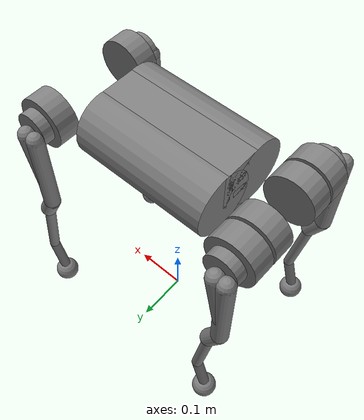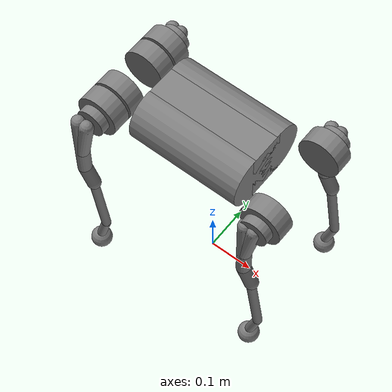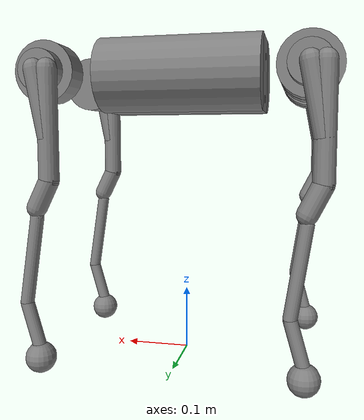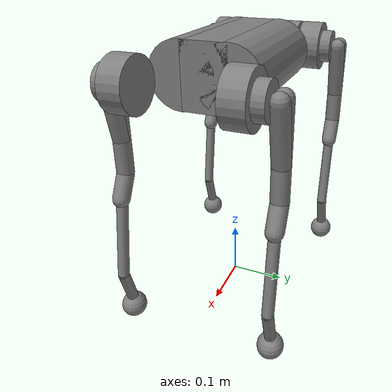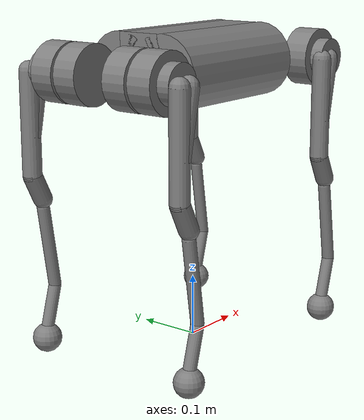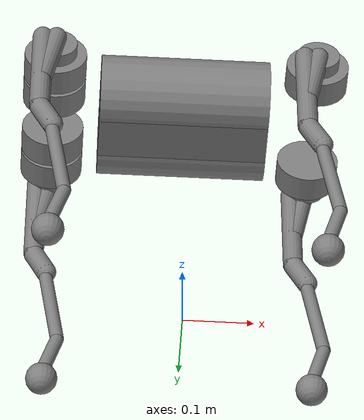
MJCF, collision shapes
<mujoco model="go2 feet only">
  <compiler angle="radian" meshdir="../../../../../mujoco_menagerie/unitree_go2/assets" autolimits="true"/>

  <option iterations="1" ls_iterations="5" timestep="0.004" integrator="Euler">
    <flag eulerdamp="disable"/>
  </option>

  <default>
    <default class="go2">
      <!-- This globaly disables all collisions. -->
      <geom condim="1" contype="0" conaffinity="0"/>
      <joint axis="0 1 0" armature="0.01" damping="2.0"/>
      <general forcerange="-24 24" biastype="affine" gainprm="50 0 0" biasprm="0 -50 -0.5"/>

      <default class="abduction">
        <joint axis="1 0 0" range="-1.0472 1.0472" frictionloss="0.3"/>
        <general ctrlrange="-0.9472 0.9472"/>
      </default>

      <default class="hip">
        <joint range="-1.5708 3.4907" frictionloss="0.3"/>
        <general ctrlrange="-1.4 2.5"/>
      </default>

      <default class="knee">
        <joint range="-2.7227 -0.83776" frictionloss="1.0"/>
        <general ctrlrange="-2.6227 -0.84776"/>
      </default>

      <default class="visual">
        <geom type="mesh" contype="0" conaffinity="0" group="2" material="dark"/>
      </default>

      <default class="collision">
        <geom group="3" type="capsule"/>
        <default class="hip_left1">
          <geom size="0.046 0.02" pos="0 0.045 0" quat="1 1 0 0" type="cylinder"/>
        </default>
        <default class="hip_left2">
          <geom size="0.031 0.02" pos="0 0.065 0" quat="1 1 0 0" type="cylinder"/>
        </default>
        <default class="hip_left3">
          <geom size="0.046 0.02" quat="1 1 0 0" type="cylinder"/>
        </default>
        <default class="hip_right1">
          <geom size="0.046 0.02" pos="0 -0.045 0" quat="1 1 0 0" type="cylinder"/>
        </default>
        <default class="hip_right2">
          <geom size="0.031 0.02" pos="0 -0.065 0" quat="1 1 0 0" type="cylinder"/>
        </default>
        <default class="hip_right3">
          <geom size="0.046 0.02" quat="1 1 0 0" type="cylinder"/>
        </default>
        <default class="thigh1">
          <geom size="0.015" fromto="-0.02 0 0 -0.02 0 -0.16"/>
        </default>
        <default class="thigh2">
          <geom size="0.015" fromto="0 0 0 -0.02 0 -0.1"/>
        </default>
        <default class="thigh3">
          <geom size="0.015" fromto="-0.02 0 -0.16 0 0 -0.2"/>
        </default>
        <default class="calf1">
          <geom size="0.01" fromto="0 0 0 0.02 0 -0.13"/>
        </default>
        <default class="calf2">
          <geom size="0.01" fromto="0.02 0 -0.13 0 0 -0.2"/>
        </default>
        <default class="foot">
          <geom type="sphere" size="0.023" pos="0 0 -0.213" solimp="0.9 .95 0.023" contype="0" conaffinity="1"/>
        </default>
      </default>
    </default>
  </default>

  <asset>
    <material name="metal" rgba=".9 .95 .95 1"/>
    <material name="black" rgba="0 0 0 1"/>
    <material name="white" rgba="1 1 1 1"/>
    <material name="gray" rgba="0.671705 0.692426 0.774270 1"/>

    <mesh class="go2" file="../../../../mujoco_menagerie/unitree_go2/assets/base_0.obj"/>
    <mesh class="go2" file="../../../../mujoco_menagerie/unitree_go2/assets/base_1.obj"/>
    <mesh class="go2" file="../../../../mujoco_menagerie/unitree_go2/assets/base_2.obj"/>
    <mesh class="go2" file="../../../../mujoco_menagerie/unitree_go2/assets/base_3.obj"/>
    <mesh class="go2" file="../../../../mujoco_menagerie/unitree_go2/assets/base_4.obj"/>
    <mesh class="go2" file="../../../../mujoco_menagerie/unitree_go2/assets/hip_0.obj"/>
    <mesh class="go2" file="../../../../mujoco_menagerie/unitree_go2/assets/hip_1.obj"/>
    <mesh class="go2" file="../../../../mujoco_menagerie/unitree_go2/assets/thigh_0.obj"/>
    <mesh class="go2" file="../../../../mujoco_menagerie/unitree_go2/assets/thigh_1.obj"/>
    <mesh class="go2" file="../../../../mujoco_menagerie/unitree_go2/assets/thigh_mirror_0.obj"/>
    <mesh class="go2" file="../../../../mujoco_menagerie/unitree_go2/assets/thigh_mirror_1.obj"/>
    <mesh class="go2" file="../../../../mujoco_menagerie/unitree_go2/assets/calf_0.obj"/>
    <mesh class="go2" file="../../../../mujoco_menagerie/unitree_go2/assets/calf_1.obj"/>
    <mesh class="go2" file="../../../../mujoco_menagerie/unitree_go2/assets/calf_mirror_0.obj"/>
    <mesh class="go2" file="../../../../mujoco_menagerie/unitree_go2/assets/calf_mirror_1.obj"/>
    <mesh class="go2" file="../../../../mujoco_menagerie/unitree_go2/assets/foot.obj"/>
  </asset>

  <worldbody>
    <light name="spotlight" mode="targetbodycom" target="trunk" pos="3 0 4"/>
    <body name="trunk" pos="0 0 0.445" childclass="go2">

      <camera name="track" pos="0.846 -1.3 0.316" xyaxes="0.866 0.500 0.000 -0.171 0.296 0.940" mode="trackcom"/>
      <camera name="top" pos="-1 0 1" xyaxes="0 -1 0 0.7 0 0.7" mode="trackcom"/>
      <camera name="side" pos="0 -1 .3" xyaxes="1 0 0 0 1 2" mode="trackcom"/>
      <camera name="back" pos="-1 0 .3" xyaxes="0 -1 0 1 0 2" mode="trackcom"/>

      <site name="head" pos="0.3 0 0" rgba="1 0 0 1" size="0.02" group="5"/>

      <inertial pos="0.021112 0 -0.005366" quat="-0.000543471 0.713435 -0.00173769 0.700719" mass="6.921"
        diaginertia="0.107027 0.0980771 0.0244531"/>
      <freejoint/>
      <geom mesh="base_0" material="black" class="visual"/>
      <geom mesh="base_1" material="black" class="visual"/>
      <geom mesh="base_2" material="black" class="visual"/>
      <geom mesh="base_3" material="white" class="visual"/>
      <geom mesh="base_4" material="gray" class="visual"/>

      <geom class="collision" size="0.125 0.04 0.057" type="box"/>
      <geom class="collision" quat="1 0 1 0" pos="0 -0.04 0" size="0.058 0.125" type="cylinder"/>
      <geom class="collision" quat="1 0 1 0" pos="0 +0.04 0" size="0.058 0.125" type="cylinder"/>

      <site name="imu" pos="-0.02557 0 0.04232" group="5"/>

      <body name="FR_hip" pos="0.1934 -0.0465 0">
        <inertial pos="-0.0054 -0.00194 -0.000105" quat="0.507341 0.514169 0.495027 0.482891" mass="0.68"
          diaginertia="0.000734064 0.000468438 0.000398719"/>
        <joint class="abduction" name="FR_hip_joint"/>
        <geom mesh="hip_0" material="metal" class="visual"/>
        <geom mesh="hip_1" material="gray" class="visual"/>
        <geom class="hip_right1"/>
        <geom class="hip_right2"/>

        <body name="FR_thigh" pos="0 -0.08 0">
          <inertial pos="-0.00304722 0.019315 -0.0305004" quat="0.498237 0.505462 0.499245 0.497014" mass="0.678"
            diaginertia="0.00088403 0.000596003 0.000479967"/>
          <joint class="hip" name="FR_thigh_joint"/>
          <geom class="thigh1"/>
          <geom class="thigh2"/>
          <geom class="thigh3"/>
          <geom mesh="thigh_mirror_0" material="metal" class="visual"/>
          <geom mesh="thigh_mirror_1" material="gray" class="visual"/>

          <body name="FR_calf" pos="0 0 -0.213">
            <inertial pos="0.00629595 0.000622121 -0.141417" quat="0.703508 -0.00450087 0.00154099 0.710672"
              mass="0.241352" diaginertia="0.0014901 0.00146356 5.31397e-05"/>
            <joint class="knee" name="FR_calf_joint"/>
            <geom mesh="calf_mirror_0" material="gray" class="visual"/>
            <geom mesh="calf_mirror_1" material="black" class="visual"/>
            <geom class="calf1"/>
            <geom class="calf2"/>

            <geom pos="0 0 -0.213" mesh="foot" class="visual" material="black"/>
            <geom name="FR" class="foot"/>
            <site name="FR" pos="0 0 -0.213" type="sphere" size="0.023" group="5"/>

          </body>
        </body>
      </body>
      <body name="FL_hip" pos="0.1934 0.0465 0">
        <inertial pos="-0.0054 0.00194 -0.000105" quat="0.497014 0.499245 0.505462 0.498237" mass="0.678"
          diaginertia="0.00088403 0.000596003 0.000479967"/>
        <joint class="abduction" name="FL_hip_joint"/>
        <geom mesh="hip_0" material="metal" class="visual"/>
        <geom mesh="hip_1" material="gray" class="visual"/>
        <geom class="hip_left1"/>
        <geom class="hip_left2"/>

        <body name="FL_thigh" pos="0 0.0955 0">
          <inertial pos="-0.00374 -0.0223 -0.0327" quat="0.829533 0.0847635 -0.0200632 0.551623" mass="1.152"
            diaginertia="0.00594973 0.00584149 0.000878787"/>
          <joint class="hip" name="FL_thigh_joint"/>
          <geom mesh="thigh_0" material="metal" class="visual"/>
          <geom mesh="thigh_1" material="gray" class="visual"/>
          <geom class="thigh1"/>
          <geom class="thigh2"/>
          <geom class="thigh3"/>

          <body name="FL_calf" pos="0 0 -0.213">
            <inertial pos="0.00629595 -0.000622121 -0.141417" quat="0.710672 0.00154099 -0.00450087 0.703508"
              mass="0.241352" diaginertia="0.0014901 0.00146356 5.31397e-05"/>
            <joint class="knee" name="FL_calf_joint"/>
            <geom mesh="calf_0" material="gray" class="visual"/>
            <geom mesh="calf_1" material="black" class="visual"/>
            <geom class="calf1"/>
            <geom class="calf2"/>
            <geom pos="0 0 -0.213" mesh="foot" class="visual" material="black"/>
            <geom name="FL" class="foot"/>
            <site name="FL" pos="0 0 -0.213" type="sphere" size="0.023" group="5"/>
          </body>

        </body>
      </body>
      <body name="RR_hip" pos="-0.1934 -0.0465 0">
        <inertial pos="0.0054 -0.00194 -0.000105" quat="0.499245 0.497014 0.498237 0.505462" mass="0.678"
          diaginertia="0.00088403 0.000596003 0.000479967"/>

        <joint class="abduction" name="RR_hip_joint"/>
        <geom mesh="hip_0" material="metal" class="visual" quat="2.14617e-09 4.63268e-05 4.63268e-05 -1"/>
        <geom mesh="hip_1" material="gray" class="visual" quat="2.14617e-09 4.63268e-05 4.63268e-05 -1"/>
        <geom class="hip_right1"/>
        <geom class="hip_right2"/>
        <geom class="hip_right3"/>

        <body name="RR_thigh" pos="0 -0.0955 0">
          <inertial pos="-0.00374 0.0223 -0.0327" quat="0.551623 -0.0200632 0.0847635 0.829533" mass="1.152"
            diaginertia="0.00594973 0.00584149 0.000878787"/>
          <joint class="hip" name="RR_thigh_joint"/>
          <geom mesh="thigh_mirror_0" material="metal" class="visual"/>
          <geom mesh="thigh_mirror_1" material="gray" class="visual"/>
          <geom class="thigh1"/>
          <geom class="thigh2"/>
          <geom class="thigh3"/>

          <body name="RR_calf" pos="0 0 -0.213">
            <inertial pos="0.00629595 0.000622121 -0.141417" quat="0.703508 -0.00450087 0.00154099 0.710672"
              mass="0.241352" diaginertia="0.0014901 0.00146356 5.31397e-05"/>

            <joint class="knee" name="RR_calf_joint"/>
            <geom mesh="calf_mirror_0" material="gray" class="visual"/>
            <geom mesh="calf_mirror_1" material="black" class="visual"/>
            <geom class="calf1"/>
            <geom class="calf2"/>
            <geom name="RR" class="foot"/>
            <site name="RR" pos="0 0 -0.213" type="sphere" size="0.023" group="5"/>
          </body>

        </body>
      </body>
      <body name="RL_hip" pos="-0.1934 0.0465 0">
        <inertial pos="0.0054 0.00194 -0.000105" quat="0.505462 0.498237 0.497014 0.499245" mass="0.678"
          diaginertia="0.00088403 0.000596003 0.000479967"/>
        <joint class="abduction" name="RL_hip_joint"/>
        <geom mesh="hip_0" material="metal" class="visual" quat="4.63268e-05 0 1 0"/>
        <geom mesh="hip_1" material="gray" class="visual" quat="4.63268e-05 0 1 0"/>
        <geom class="hip_left1"/>
        <geom class="hip_left2"/>
        <geom class="hip_left3"/>

        <body name="RL_thigh" pos="0 0.0955 0">
          <inertial pos="-0.00374 -0.0223 -0.0327" quat="0.829533 0.0847635 -0.0200632 0.551623" mass="1.152"
            diaginertia="0.00594973 0.00584149 0.000878787"/>
          <joint class="hip" name="RL_thigh_joint"/>
          <geom mesh="thigh_0" material="metal" class="visual"/>
          <geom mesh="thigh_1" material="gray" class="visual"/>
          <geom class="thigh1"/>
          <geom class="thigh2"/>
          <geom class="thigh3"/>

          <body name="RL_calf" pos="0 0 -0.213">
            <inertial pos="0.00629595 -0.000622121 -0.141417" quat="0.710672 0.00154099 -0.00450087 0.703508"
              mass="0.241352" diaginertia="0.0014901 0.00146356 5.31397e-05"/>
            <joint class="knee" name="RL_calf_joint"/>
            <geom mesh="calf_0" material="gray" class="visual"/>
            <geom mesh="calf_1" material="black" class="visual"/>
            <geom class="calf1"/>
            <geom class="calf2"/>

            <geom name="RL" class="foot"/>
            <site name="RL" pos="0 0 -0.213" type="sphere" size="0.023" group="5"/>
          </body>
        </body>
      </body>
    </body>
  </worldbody>

<!-- si control es por posicion -->

<!-- original es por torque: -->
  <actuator>
    <general class="abduction" name="FL_hip" joint="FL_hip_joint"/>
    <general class="hip" name="FL_thigh" joint="FL_thigh_joint"/>
    <general class="knee" name="FL_calf" joint="FL_calf_joint"/>
    <general class="abduction" name="FR_hip" joint="FR_hip_joint"/>
    <general class="hip" name="FR_thigh" joint="FR_thigh_joint"/>
    <general class="knee" name="FR_calf" joint="FR_calf_joint"/>
    <general class="abduction" name="RL_hip" joint="RL_hip_joint"/>
    <general class="hip" name="RL_thigh" joint="RL_thigh_joint"/>
    <general class="knee" name="RL_calf" joint="RL_calf_joint"/>
    <general class="abduction" name="RR_hip" joint="RR_hip_joint"/>
    <general class="hip" name="RR_thigh" joint="RR_thigh_joint"/>
    <general class="knee" name="RR_calf" joint="RR_calf_joint"/>
  </actuator>

    <sensor>
    <jointpos joint="FL_hip_joint" name="abduction_front_left_pos"/>
    <jointpos joint="FL_thigh_joint" name="hip_front_left_pos"/>
    <jointpos joint="FL_calf_joint" name="knee_front_left_pos"/>
    <jointpos joint="RL_hip_joint" name="abduction_hind_left_pos"/>
    <jointpos joint="RL_thigh_joint" name="hip_hind_left_pos"/>
    <jointpos joint="RL_calf_joint" name="knee_hind_left_pos"/>
    <jointpos joint="FR_hip_joint" name="abduction_front_right_pos"/>
    <jointpos joint="FR_thigh_joint" name="hip_front_right_pos"/>
    <jointpos joint="FR_calf_joint" name="knee_front_right_pos"/>
    <jointpos joint="RR_hip_joint" name="abduction_hind_right_pos"/>
    <jointpos joint="RR_thigh_joint" name="hip_hind_right_pos"/>
    <jointpos joint="RR_calf_joint" name="knee_hind_right_pos"/>
    <jointvel joint="FL_hip_joint" name="abduction_front_left_vel"/>
    <jointvel joint="FL_thigh_joint" name="hip_front_left_vel"/>
    <jointvel joint="FL_calf_joint" name="knee_front_left_vel"/>
    <jointvel joint="RL_hip_joint" name="abduction_hind_left_vel"/>
    <jointvel joint="RL_thigh_joint" name="hip_hind_left_vel"/>
    <jointvel joint="RL_calf_joint" name="knee_hind_left_vel"/>
    <jointvel joint="FR_hip_joint" name="abduction_front_right_vel"/>
    <jointvel joint="FR_thigh_joint" name="hip_front_right_vel"/>
    <jointvel joint="FR_calf_joint" name="knee_front_right_vel"/>
    <jointvel joint="RR_hip_joint" name="abduction_hind_right_vel"/>
    <jointvel joint="RR_thigh_joint" name="hip_hind_right_vel"/>
    <jointvel joint="RR_calf_joint" name="knee_hind_right_vel"/>
    <gyro site="imu" name="gyro"/>
    <accelerometer site="imu" name="accelerometer"/>
    <framequat objtype="site" objname="imu" name="orientation"/>
    <framepos objtype="site" objname="imu" name="global_position"/>
    <framelinvel objtype="site" objname="imu" name="global_linvel"/>
    <frameangvel objtype="site" objname="imu" name="global_angvel"/>
    <!-- Added sensors to test base -->
    <framelinvel objtype="site" objname="FR" name="FR_global_linvel"/>
    <framelinvel objtype="site" objname="FL" name="FL_global_linvel"/>
    <framelinvel objtype="site" objname="RR" name="RR_global_linvel"/>
    <framelinvel objtype="site" objname="RL" name="RL_global_linvel"/>
    <velocimeter site="imu" name="local_linvel"/>
    <framezaxis objtype="site" objname="imu" name="upvector"/>
  </sensor>

</mujoco>
